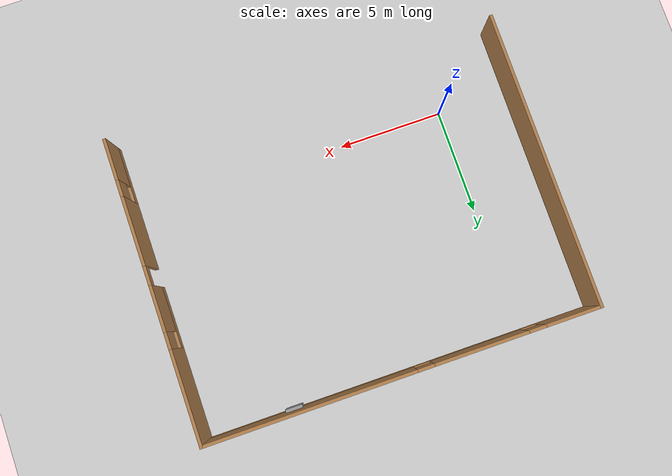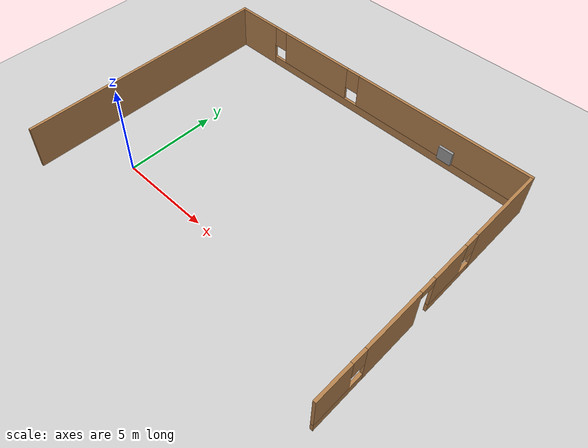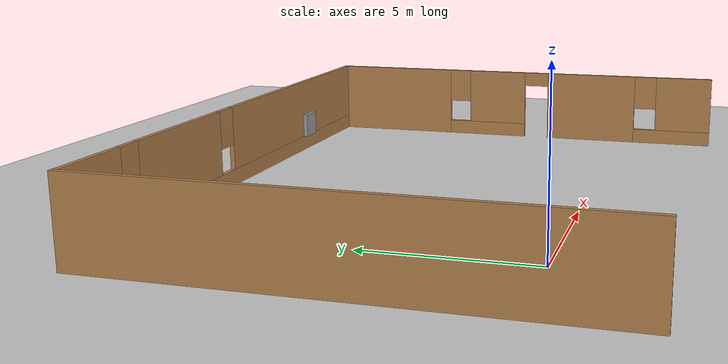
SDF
<sdf version="1.7">
 <world name="default">
  <light name="sun" type="directional">
   <pose>0 0 10 0 -0 0</pose>
   <diffuse>0.8 0.8 0.8 1</diffuse>
   <specular>0.2 0.2 0.2 1</specular>
   <attenuation>
    <range>1000</range>
    <constant>0.9</constant>
    <linear>0.01</linear>
    <quadratic>0.001</quadratic>
   </attenuation>
   <direction>-0.5 0.1 -0.9</direction>
   <spot><inner_angle>0</inner_angle><outer_angle>0</outer_angle><falloff>0</falloff></spot>
  </light>
  <model name="ground_plane">
   <static>1</static>
   <link name="link">
    <collision name="collision">
     <geometry><plane><normal>0 0 1</normal><size>100 100</size></plane></geometry>
     <surface>
      <contact><collide_bitmask>65535</collide_bitmask></contact>
      <friction><ode><mu>100</mu><mu2>50</mu2></ode></friction>
     </surface>
    </collision>
    <visual name="visual">
     <cast_shadows>0</cast_shadows>
     <geometry><plane><normal>0 0 1</normal><size>100 100</size></plane></geometry>
     <material>
      <script><uri>file://media/materials/scripts/gazebo.material</uri><name>Gazebo/Grey</name></script>
     </material>
    </visual>
   </link>
  </model>
  <gravity>0 0 -9.8</gravity>
  <magnetic_field>6e-06 2.3e-05 -4.2e-05</magnetic_field>
  <atmosphere type="adiabatic"/>
  <physics type="ode">
   <max_step_size>0.001</max_step_size>
   <real_time_factor>1</real_time_factor>
   <real_time_update_rate>1000</real_time_update_rate>
  </physics>
  <scene><ambient>0.4 0.4 0.4 1</ambient><background>0.7 0.7 0.7 1</background><shadows>1</shadows></scene>
  <spherical_coordinates>
   <surface_model>EARTH_WGS84</surface_model>
   <latitude_deg>0</latitude_deg>
   <longitude_deg>0</longitude_deg>
   <elevation>0</elevation>
   <heading_deg>0</heading_deg>
  </spherical_coordinates>
  <model name="wood_building">
   <pose>5.91 3.895 0 0 -0 0</pose>
   <link name="Wall_0">
    <collision name="Wall_0_Collision">
     <geometry><box><size>14.25 0.15 2.5</size></box></geometry>
     <pose>0 0 1.25 0 -0 0</pose>
    </collision>
    <visual name="Wall_0_Visual">
     <pose>0 0 1.25 0 -0 0</pose>
     <geometry><box><size>14.25 0.15 2.5</size></box></geometry>
     <material>
      <script><uri>file://media/materials/scripts/gazebo.material</uri><name>Gazebo/Wood</name></script>
      <ambient>1 1 1 1</ambient>
     </material>
     <meta><layer>0</layer></meta>
    </visual>
    <pose>-9.3 0.125 0 0 -0 1.5708</pose>
   </link>
   <link name="Wall_1">
    <pose>-0 7.175 0 0 -0 0</pose>
    <visual name="Wall_1_Visual_0">
     <pose>-8.03419 0 1.25 0 -0 0</pose>
     <geometry><box><size>2.68162 0.15 2.5</size></box></geometry>
     <material>
      <script><uri>file://media/materials/scripts/gazebo.material</uri><name>Gazebo/Wood</name></script>
      <ambient>1 1 1 1</ambient>
     </material>
     <meta><layer>0</layer></meta>
    </visual>
    <collision name="Wall_1_Collision_0">
     <geometry><box><size>2.68162 0.15 2.5</size></box></geometry>
     <pose>-8.03419 0 1.25 0 -0 0</pose>
    </collision>
    <visual name="Wall_1_Visual_1">
     <pose>1.34081 0 0.25 0 -0 0</pose>
     <geometry><box><size>16.0684 0.15 0.5</size></box></geometry>
     <material>
      <script><uri>file://media/materials/scripts/gazebo.material</uri><name>Gazebo/Wood</name></script>
      <ambient>1 1 1 1</ambient>
     </material>
     <meta><layer>0</layer></meta>
    </visual>
    <collision name="Wall_1_Collision_1">
     <geometry><box><size>16.0684 0.15 0.5</size></box></geometry>
     <pose>1.34081 0 0.25 0 -0 0</pose>
    </collision>
    <visual name="Wall_1_Visual_2">
     <pose>-3.6798 0 1.5 0 -0 0</pose>
     <geometry><box><size>4.42715 0.15 2</size></box></geometry>
     <material>
      <script><uri>file://media/materials/scripts/gazebo.material</uri><name>Gazebo/Wood</name></script>
      <ambient>1 1 1 1</ambient>
     </material>
     <meta><layer>0</layer></meta>
    </visual>
    <collision name="Wall_1_Collision_2">
     <geometry><box><size>4.42715 0.15 2</size></box></geometry>
     <pose>-3.6798 0 1.5 0 -0 0</pose>
    </collision>
    <visual name="Wall_1_Visual_3">
     <pose>4.35439 0 1.5 0 -0 0</pose>
     <geometry><box><size>10.0412 0.15 2</size></box></geometry>
     <material>
      <script><uri>file://media/materials/scripts/gazebo.material</uri><name>Gazebo/Wood</name></script>
      <ambient>1 1 1 1</ambient>
     </material>
     <meta><layer>0</layer></meta>
    </visual>
    <collision name="Wall_1_Collision_3">
     <geometry><box><size>10.0412 0.15 2</size></box></geometry>
     <pose>4.35439 0 1.5 0 -0 0</pose>
    </collision>
    <visual name="Wall_1_Visual_4">
     <pose>-6.29338 0 1.9 0 -0 0</pose>
     <geometry><box><size>0.8 0.15 1.2</size></box></geometry>
     <material>
      <script><uri>file://media/materials/scripts/gazebo.material</uri><name>Gazebo/Wood</name></script>
      <ambient>1 1 1 1</ambient>
     </material>
     <meta><layer>0</layer></meta>
    </visual>
    <collision name="Wall_1_Collision_4">
     <geometry><box><size>0.8 0.15 1.2</size></box></geometry>
     <pose>-6.29338 0 1.9 0 -0 0</pose>
    </collision>
    <visual name="Wall_1_Visual_5">
     <pose>-1.06622 0 1.9 0 -0 0</pose>
     <geometry><box><size>0.8 0.15 1.2</size></box></geometry>
     <material>
      <script><uri>file://media/materials/scripts/gazebo.material</uri><name>Gazebo/Wood</name></script>
      <ambient>1 1 1 1</ambient>
     </material>
     <meta><layer>0</layer></meta>
    </visual>
    <collision name="Wall_1_Collision_5">
     <geometry><box><size>0.8 0.15 1.2</size></box></geometry>
     <pose>-1.06622 0 1.9 0 -0 0</pose>
    </collision>
   </link>
   <link name="Wall_2">
    <pose>9.3 0 0 0 -0 -1.5708</pose>
    <visual name="Wall_2_Visual_0">
     <pose>-4.99987 0 1.25 0 -0 0</pose>
     <geometry><box><size>4.50026 0.15 2.5</size></box></geometry>
     <material>
      <script><uri>file://media/materials/scripts/gazebo.material</uri><name>Gazebo/Wood</name></script>
      <ambient>1 1 1 1</ambient>
     </material>
     <meta><layer>0</layer></meta>
    </visual>
    <collision name="Wall_2_Collision_0">
     <geometry><box><size>4.50026 0.15 2.5</size></box></geometry>
     <pose>-4.99987 0 1.25 0 -0 0</pose>
    </collision>
    <visual name="Wall_2_Visual_1">
     <pose>2.78712 0 1.25 0 -0 0</pose>
     <geometry><box><size>3.31351 0.15 2.5</size></box></geometry>
     <material>
      <script><uri>file://media/materials/scripts/gazebo.material</uri><name>Gazebo/Wood</name></script>
      <ambient>1 1 1 1</ambient>
     </material>
     <meta><layer>0</layer></meta>
    </visual>
    <collision name="Wall_2_Collision_1">
     <geometry><box><size>3.31351 0.15 2.5</size></box></geometry>
     <pose>2.78712 0 1.25 0 -0 0</pose>
    </collision>
    <visual name="Wall_2_Visual_2">
     <pose>-1.25969 0 0.25 0 -0 0</pose>
     <geometry><box><size>2.98011 0.15 0.5</size></box></geometry>
     <material>
      <script><uri>file://media/materials/scripts/gazebo.material</uri><name>Gazebo/Wood</name></script>
      <ambient>1 1 1 1</ambient>
     </material>
     <meta><layer>0</layer></meta>
    </visual>
    <collision name="Wall_2_Collision_2">
     <geometry><box><size>2.98011 0.15 0.5</size></box></geometry>
     <pose>-1.25969 0 0.25 0 -0 0</pose>
    </collision>
    <visual name="Wall_2_Visual_3">
     <pose>5.84694 0 0.25 0 -0 0</pose>
     <geometry><box><size>2.80612 0.15 0.5</size></box></geometry>
     <material>
      <script><uri>file://media/materials/scripts/gazebo.material</uri><name>Gazebo/Wood</name></script>
      <ambient>1 1 1 1</ambient>
     </material>
     <meta><layer>0</layer></meta>
    </visual>
    <collision name="Wall_2_Collision_3">
     <geometry><box><size>2.80612 0.15 0.5</size></box></geometry>
     <pose>5.84694 0 0.25 0 -0 0</pose>
    </collision>
    <visual name="Wall_2_Visual_4">
     <pose>-0.859688 0 1.5 0 -0 0</pose>
     <geometry><box><size>2.18011 0.15 2</size></box></geometry>
     <material>
      <script><uri>file://media/materials/scripts/gazebo.material</uri><name>Gazebo/Wood</name></script>
      <ambient>1 1 1 1</ambient>
     </material>
     <meta><layer>0</layer></meta>
    </visual>
    <collision name="Wall_2_Collision_4">
     <geometry><box><size>2.18011 0.15 2</size></box></geometry>
     <pose>-0.859688 0 1.5 0 -0 0</pose>
    </collision>
    <visual name="Wall_2_Visual_5">
     <pose>-0.859688 0 1.5 0 -0 0</pose>
     <geometry><box><size>2.18011 0.15 2</size></box></geometry>
     <material>
      <script><uri>file://media/materials/scripts/gazebo.material</uri><name>Gazebo/Wood</name></script>
      <ambient>1 1 1 1</ambient>
     </material>
     <meta><layer>0</layer></meta>
    </visual>
    <collision name="Wall_2_Collision_5">
     <geometry><box><size>2.18011 0.15 2</size></box></geometry>
     <pose>-0.859688 0 1.5 0 -0 0</pose>
    </collision>
    <visual name="Wall_2_Visual_6">
     <pose>6.24694 0 1.5 0 -0 0</pose>
     <geometry><box><size>2.00612 0.15 2</size></box></geometry>
     <material>
      <script><uri>file://media/materials/scripts/gazebo.material</uri><name>Gazebo/Wood</name></script>
      <ambient>1 1 1 1</ambient>
     </material>
     <meta><layer>0</layer></meta>
    </visual>
    <collision name="Wall_2_Collision_6">
     <geometry><box><size>2.00612 0.15 2</size></box></geometry>
     <pose>6.24694 0 1.5 0 -0 0</pose>
    </collision>
    <visual name="Wall_2_Visual_7">
     <pose>-2.34974 0 1.9 0 -0 0</pose>
     <geometry><box><size>0.8 0.15 1.2</size></box></geometry>
     <material>
      <script><uri>file://media/materials/scripts/gazebo.material</uri><name>Gazebo/Wood</name></script>
      <ambient>1 1 1 1</ambient>
     </material>
     <meta><layer>0</layer></meta>
    </visual>
    <collision name="Wall_2_Collision_7">
     <geometry><box><size>0.8 0.15 1.2</size></box></geometry>
     <pose>-2.34974 0 1.9 0 -0 0</pose>
    </collision>
    <visual name="Wall_2_Visual_8">
     <pose>4.84388 0 1.9 0 -0 0</pose>
     <geometry><box><size>0.8 0.15 1.2</size></box></geometry>
     <material>
      <script><uri>file://media/materials/scripts/gazebo.material</uri><name>Gazebo/Wood</name></script>
      <ambient>1 1 1 1</ambient>
     </material>
     <meta><layer>0</layer></meta>
    </visual>
    <collision name="Wall_2_Collision_8">
     <geometry><box><size>0.8 0.15 1.2</size></box></geometry>
     <pose>4.84388 0 1.9 0 -0 0</pose>
    </collision>
    <visual name="Wall_2_Visual_9">
     <pose>0.680367 0 2.25 0 -0 0</pose>
     <geometry><box><size>0.9 0.15 0.5</size></box></geometry>
     <material>
      <script><uri>file://media/materials/scripts/gazebo.material</uri><name>Gazebo/Wood</name></script>
      <ambient>1 1 1 1</ambient>
     </material>
     <meta><layer>0</layer></meta>
    </visual>
    <collision name="Wall_2_Collision_9">
     <geometry><box><size>0.9 0.15 0.5</size></box></geometry>
     <pose>0.680367 0 2.25 0 -0 0</pose>
    </collision>
    <visual name="Wall_2_Visual_10">
     <pose>0.680367 0 2.25 0 -0 0</pose>
     <geometry><box><size>0.9 0.15 0.5</size></box></geometry>
     <material>
      <script><uri>file://media/materials/scripts/gazebo.material</uri><name>Gazebo/Wood</name></script>
      <ambient>1 1 1 1</ambient>
     </material>
     <meta><layer>0</layer></meta>
    </visual>
    <collision name="Wall_2_Collision_10">
     <geometry><box><size>0.9 0.15 0.5</size></box></geometry>
     <pose>0.680367 0 2.25 0 -0 0</pose>
    </collision>
   </link>
   <link name="Window_2">
    <collision name="Window_2_Collision">
     <geometry><box><size>0.8 0.17 0.8</size></box></geometry>
     <pose>0 0 0.4 0 -0 0</pose>
    </collision>
    <visual name="Window_2_Visual">
     <pose>0 0 0.4 0 -0 0</pose>
     <geometry><box><size>0.8 0.17 0.8</size></box></geometry>
     <material>
      <script><uri>file://media/materials/scripts/gazebo.material</uri><name>Gazebo/Grey</name></script>
     </material>
    </visual>
    <pose>5.08964 7.04092 0.5 0 -0 0</pose>
   </link>
   <static>1</static>
  </model>
 </world>
</sdf>
